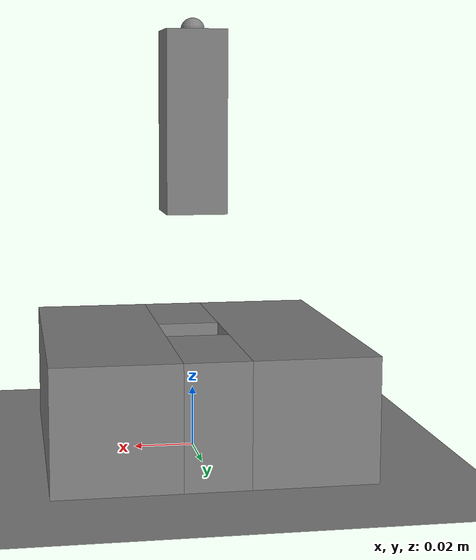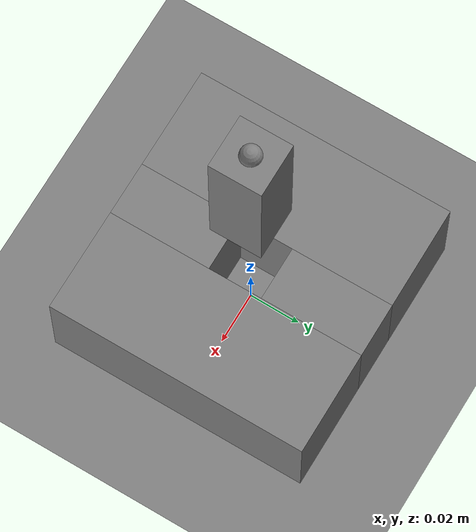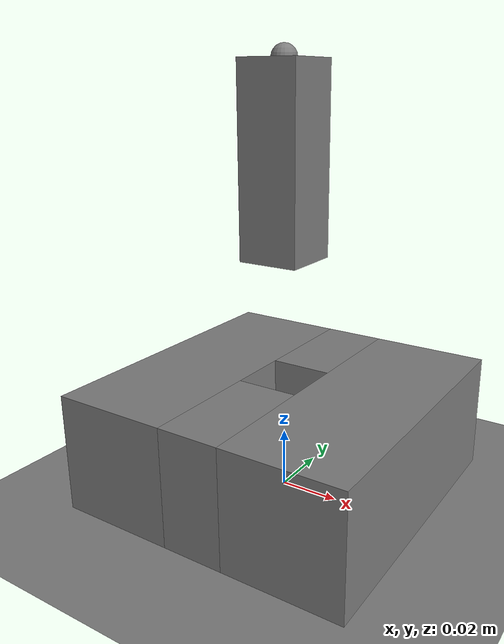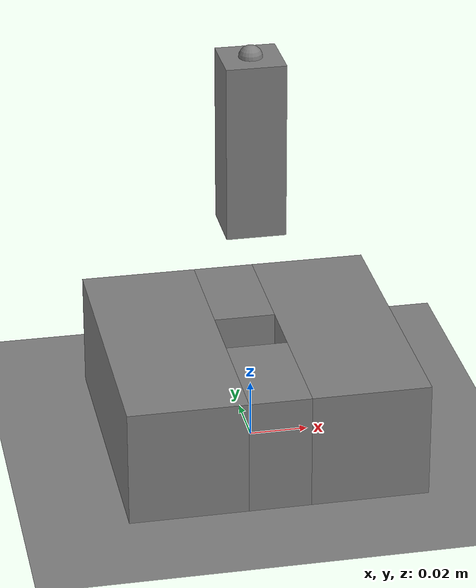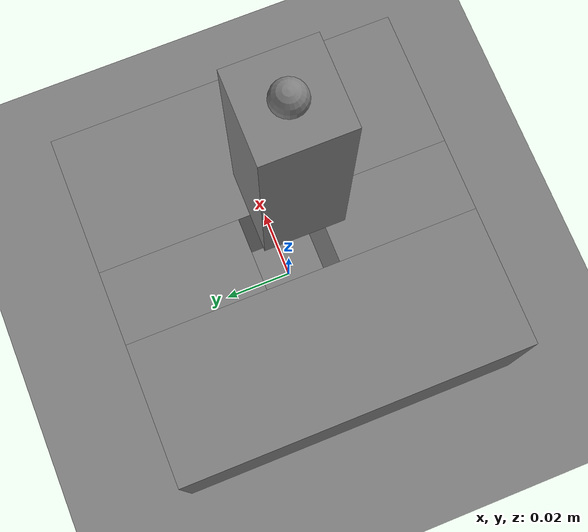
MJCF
<mujoco model="peg_in_hole">
  <option timestep="0.002" integrator="implicitfast" cone="elliptic"/>
  <default><geom condim="4" friction="0.6 0.005 0.0001" solref="0.005 1"/></default>
  <worldbody>
    <geom name="floor" type="plane" size="1 1 .1"/>
    <!-- square hole: opening 21 mm, depth 40 mm; peg is 20 mm -> 0.5 mm clearance per side -->
    <body name="hole" pos="0 0 0.02">
      <geom name="w_px" type="box" size="0.02 0.0505 0.02" pos=" 0.0305 0 0"/>
      <geom name="w_nx" type="box" size="0.02 0.0505 0.02" pos="-0.0305 0 0"/>
      <geom name="w_py" type="box" size="0.0105 0.02 0.02" pos="0  0.0305 0"/>
      <geom name="w_ny" type="box" size="0.0105 0.02 0.02" pos="0 -0.0305 0"/>
    </body>
    <body name="gantry_x" pos="0 0 0.15">
      <joint name="jx" type="slide" axis="1 0 0" damping="20"/>
      <inertial pos="0 0 0" mass="0.5" diaginertia="1e-3 1e-3 1e-3"/>
      <body name="gantry_y">
        <joint name="jy" type="slide" axis="0 1 0" damping="20"/>
        <inertial pos="0 0 0" mass="0.5" diaginertia="1e-3 1e-3 1e-3"/>
        <body name="wrist">
          <joint name="jz" type="slide" axis="0 0 1" damping="20"/>
          <inertial pos="0 0 0" mass="0.5" diaginertia="1e-3 1e-3 1e-3"/>
          <body name="peg" pos="0 0 -0.01">
            <site name="ft" pos="0 0 0" size="0.004"/>
            <geom name="peg" type="box" size="0.010 0.010 0.03" pos="0 0 -0.03" mass="0.1"/>
          </body>
        </body>
      </body>
    </body>
  </worldbody>
  <actuator>
    <position name="ax" joint="jx" kp="800"/>
    <position name="ay" joint="jy" kp="800"/>
    <position name="az" joint="jz" kp="800"/>
  </actuator>
  <sensor>
    <force name="ft_force" site="ft"/>
    <torque name="ft_torque" site="ft"/>
  </sensor>
</mujoco>
